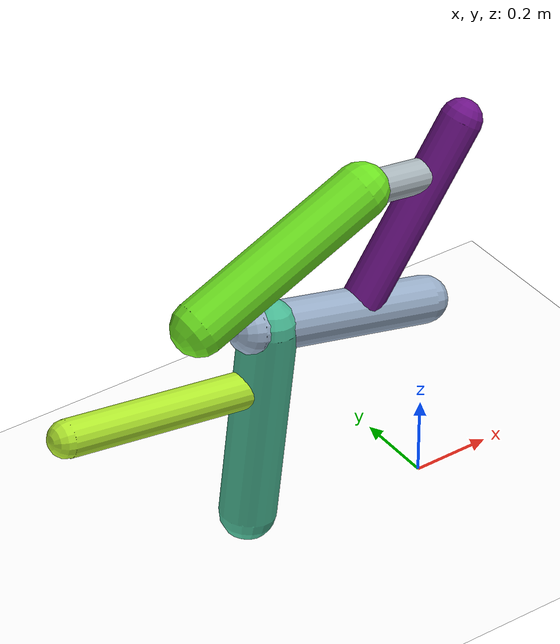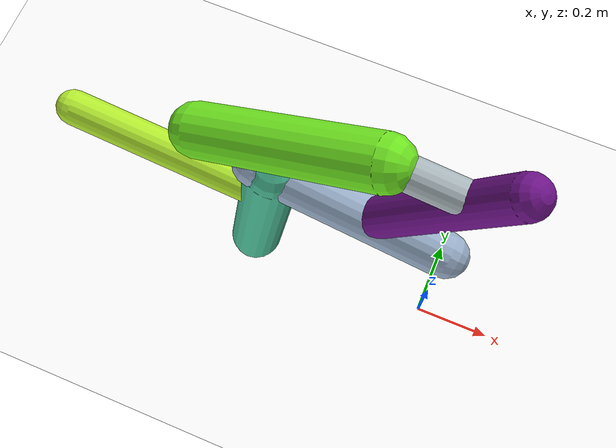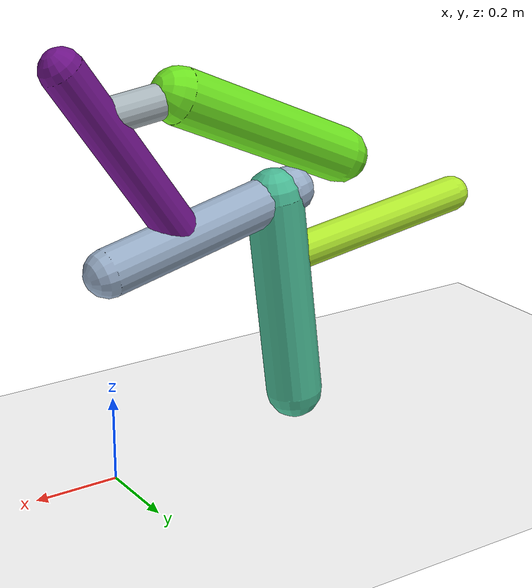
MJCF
<mujoco model="morphology">
  <option timestep="0.01"/>
  <default>
    <default class="/"/>
    <default class="0/"/>
    <default class="0/1/"/>
    <default class="0/1/2/"/>
    <default class="0/3/"/>
    <default class="0/3/4/"/>
    <default class="0/3/4/5/"/>
  </default>
  <asset>
    <texture name="texplane" type="2d" builtin="checker" rgb1="0.10000000000000001 0.20000000000000001 0.29999999999999999" rgb2="0.20000000000000001 0.29999999999999999 0.40000000000000002" width="300" height="300"/>
    <material name="MatPlane" class="/" texture="texplane" texrepeat="20 20" specular="1" shininess="1" reflectance="0.5"/>
  </asset>
  <worldbody>
    <light name="//unnamed_light_0" class="/" directional="true" pos="0 0 1.5" dir="0 0 -1.3" cutoff="100" exponent="1" diffuse="1 1 1" specular="0.10000000000000001 0.10000000000000001 0.10000000000000001"/>
    <geom name="ground" class="/" type="plane" size="15 15 0.5" material="MatPlane" rgba="1 1 1 1"/>
    <site name="body" class="/" size="9.9999999999999995e-07 9.9999999999999995e-07 9.9999999999999995e-07" pos="0 0 0.50139895677566526"/>
    <body pos="0 0 0.50139895677566526" name="0/">
      <joint name="0/rootx/" class="/" type="slide" axis="1 0 0" limited="false" stiffness="0" armature="0" damping="0"/>
      <joint name="0/rootz/" class="/" type="slide" axis="0 0 1" limited="false" stiffness="0" armature="0" damping="0"/>
      <joint name="0/rooty/" class="/" type="hinge" axis="0 1 0" limited="false" stiffness="0" armature="0" damping="0"/>
      <geom name="0/geom" class="0/" type="capsule" contype="1" conaffinity="1" condim="3" size="0.057045521086733192" rgba="0.60477890926728128 0.68991362345920992 0.79465318371131288 1" friction="0.59999999999999998 0.10000000000000001 0.10000000000000001" fromto="0 0 0 -0.48260781366681355 0 0.11097649508683549"/>
      <site name="0/end0" class="0/" size="0.0050000000000000001" pos="-0.48260781366681355 0 0.11097649508683549"/>
      <site name="0/attach1" class="0/" size="9.9999999999999995e-07 9.9999999999999995e-07 9.9999999999999995e-07" pos="-0.43910612645333519 0 0.10097320744705311"/>
      <body pos="-0.43910612645333519 0 0.10097320744705311" name="0/1/">
        <joint name="0/1/joint/" class="0/" type="hinge" axis="0 1 0" limited="true" range="-53.947921458892608 53.947921458892608"/>
        <geom name="0/1/geom" class="0/1/" type="capsule" contype="1" conaffinity="1" condim="3" size="0.068172014566096645" rgba="0.29325818881500265 0.74348230452294539 0.59530470391334922 1" friction="0.59999999999999998 0.10000000000000001 0.10000000000000001" fromto="0 0 0 -0.059726351542952916 0 -0.50237217239589693"/>
        <site name="0/1/end1" class="0/1/" size="0.0050000000000000001" pos="-0.059726351542952916 0 -0.50237217239589693"/>
        <site name="0/1/attach2" class="0/1/" size="9.9999999999999995e-07 9.9999999999999995e-07 9.9999999999999995e-07" pos="-0.01833211668568898 0 -0.15419567822389904"/>
        <body pos="-0.01833211668568898 0 -0.15419567822389904" name="0/1/2/">
          <geom name="0/1/2/geom" class="0/1/2/" type="capsule" contype="1" conaffinity="1" condim="3" size="0.0444976030983677" rgba="0.70679448755339414 0.92384407934151191 0.18564134567830581 1" friction="0.59999999999999998 0.10000000000000001 0.10000000000000001" fromto="0 0 0 -0.51805012417146123 0 0.073946461638870087"/>
          <site name="0/1/2/end2" class="0/1/2/" size="0.0050000000000000001" pos="-0.51805012417146123 0 0.073946461638870087"/>
        </body>
      </body>
      <site name="0/attach3" class="0/" size="9.9999999999999995e-07 9.9999999999999995e-07 9.9999999999999995e-07" pos="-0.19429222638965701 0 0.044677830935883164"/>
      <body pos="-0.19429222638965701 0 0.044677830935883164" name="0/3/">
        <joint name="0/3/joint/" class="0/" type="hinge" axis="0 1 0" limited="true" range="-44.600108514003473 44.600108514003473"/>
        <geom name="0/3/geom" class="0/3/" type="capsule" contype="1" conaffinity="1" condim="3" size="0.050337105660780937" rgba="0.44102262669035364 0.079389737776089708 0.54762700537730713 1" friction="0.59999999999999998 0.10000000000000001 0.10000000000000001" fromto="0 0 0 0.28477567435398021 0 0.41519169933614775"/>
        <site name="0/3/end3" class="0/3/" size="0.0050000000000000001" pos="0.28477567435398021 0 0.41519169933614775"/>
        <site name="0/3/attach4" class="0/3/" size="9.9999999999999995e-07 9.9999999999999995e-07 9.9999999999999995e-07" pos="0.20688900277821828 0 0.30163600466336271"/>
        <body pos="0.20688900277821828 0 0.30163600466336271" name="0/3/4/">
          <joint name="0/3/4/joint/" class="0/3/" type="hinge" axis="0 1 0" limited="true" range="-32.263747473333019 32.263747473333019"/>
          <geom name="0/3/4/geom" class="0/3/4/" type="capsule" contype="1" conaffinity="1" condim="3" size="0.040618904427675809" rgba="0.67367142483139364 0.72336232695356828 0.74598417438021702 1" friction="0.59999999999999998 0.10000000000000001 0.10000000000000001" fromto="0 0 0 -0.21172853958599447 0 0.027565165441343797"/>
          <site name="0/3/4/end4" class="0/3/4/" size="0.0050000000000000001" pos="-0.21172853958599447 0 0.027565165441343797"/>
          <site name="0/3/4/attach5" class="0/3/4/" size="9.9999999999999995e-07 9.9999999999999995e-07 9.9999999999999995e-07" pos="-0.19994671647665757 0 0.026031277266208987"/>
          <body pos="-0.19994671647665757 0 0.026031277266208987" name="0/3/4/5/">
            <joint name="0/3/4/5/joint/" class="0/3/4/" type="hinge" axis="0 1 0" limited="true" range="-55.921959433975829 55.921959433975829"/>
            <geom name="0/3/4/5/geom" class="0/3/4/5/" type="capsule" contype="1" conaffinity="1" condim="3" size="0.066669397040769962" rgba="0.43822939235371672 0.90287223738242695 0.12953582754130533 1" friction="0.59999999999999998 0.10000000000000001 0.10000000000000001" fromto="0 0 0 -0.43724897810762942 0 -0.1971087351906442"/>
            <site name="0/3/4/5/end5" class="0/3/4/5/" size="0.0050000000000000001" pos="-0.43724897810762942 0 -0.1971087351906442"/>
          </body>
        </body>
      </body>
      <camera name="0/side" class="0/" mode="trackcom" pos="0.40000000000000002 -4 0.20000000000000001" quat="0.70699999999999996 0.70699999999999996 0 0"/>
    </body>
  </worldbody>
  <actuator>
    <motor name="0/1/motor" class="0/1/" ctrllimited="true" ctrlrange="-1 1" gear="77" joint="0/1/joint/"/>
    <motor name="0/3/motor" class="0/3/" ctrllimited="true" ctrlrange="-1 1" gear="55" joint="0/3/joint/"/>
    <motor name="0/3/4/motor" class="0/3/4/" ctrllimited="true" ctrlrange="-1 1" gear="80" joint="0/3/4/joint/"/>
    <motor name="0/3/4/5/motor" class="0/3/4/5/" ctrllimited="true" ctrlrange="-1 1" gear="51" joint="0/3/4/5/joint/"/>
  </actuator>
  <sensor>
    <subtreelinvel name="velocity" body="0/"/>
  </sensor>
</mujoco>
